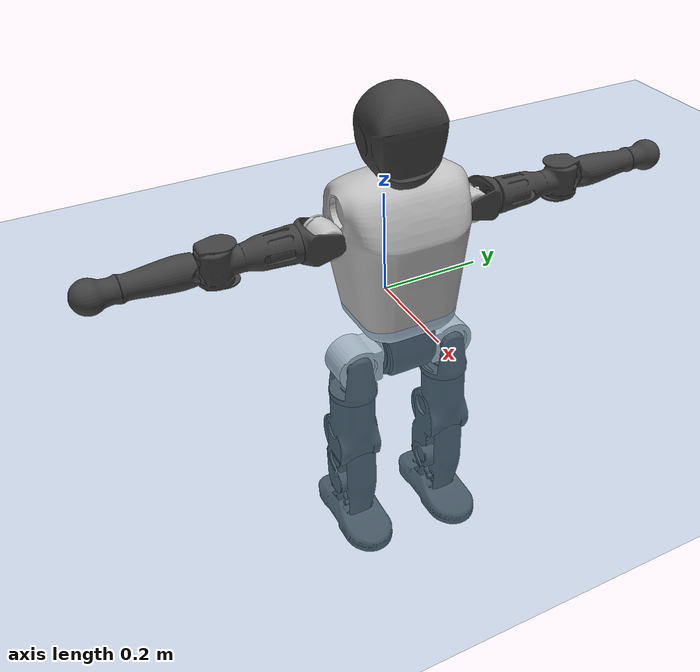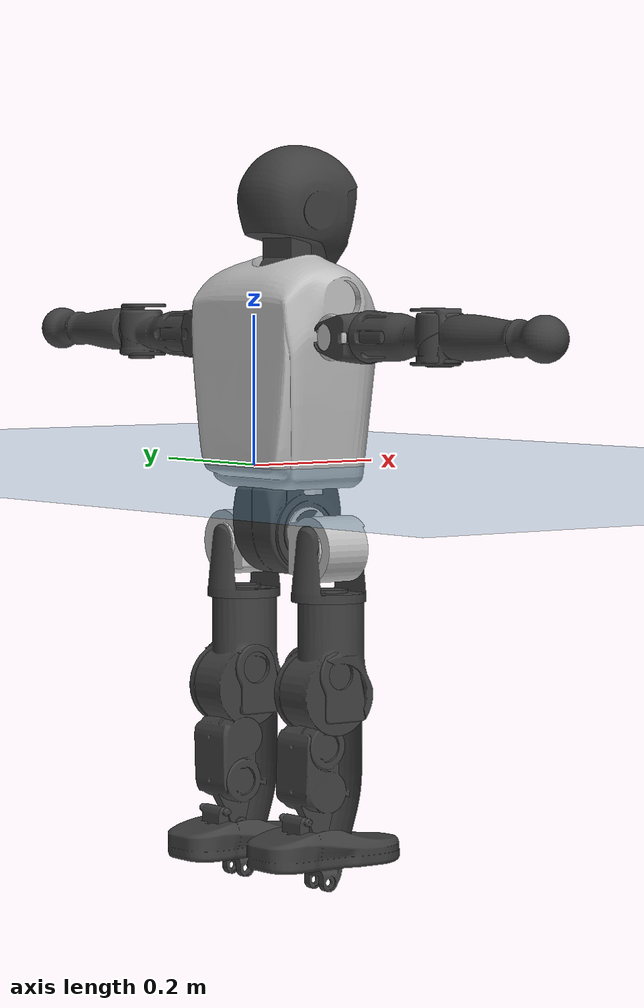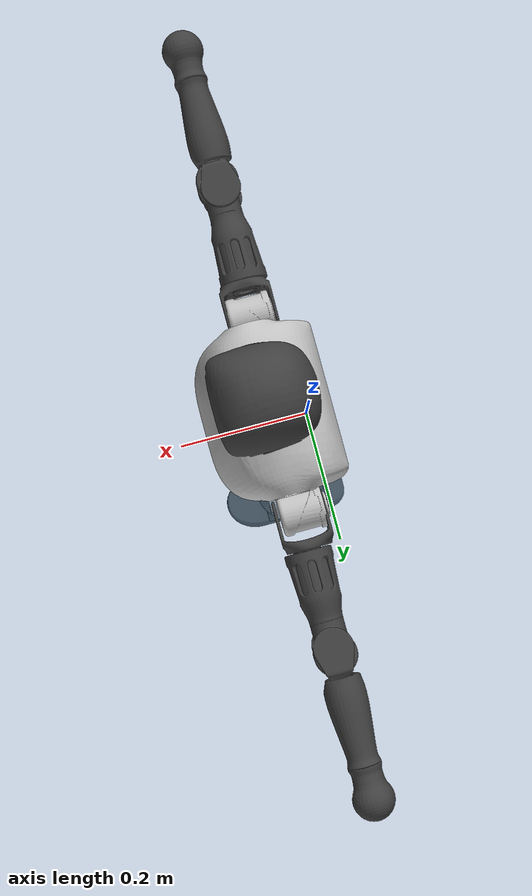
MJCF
<mujoco model="T1">
  <compiler angle="radian" assetdir="assets" balanceinertia="true" inertiafromgeom="false"/>

  <option timestep="0.005" density="1.2" viscosity="2e-05"/>

  <size nkey="1"/>

  <visual>
    <quality shadowsize="8192"/>
    <map shadowclip="0.5"/>
  </visual>

  <default>
    <default class="/">
      <joint armature="0.01" damping="0.01" frictionloss="0.1"/>
      <geom contype="0" conaffinity="0" group="1" solref="-1000 -80"/>
      <site size="0.01 0.005 0.005" group="5"/>
      <general forcelimited="true" biastype="affine" gainprm="25" biasprm="0 -25 -0.6"/>
      <default class="t1">
        <geom rgba="0.25 0.25 0.25 1"/>
        <default class="visual">
          <geom type="mesh" group="2"/>
        </default>
        <default class="collision">
          <geom group="3"/>
        </default>
        <default class="foot">
          <geom size="0.1115 0.05 0.015" type="box" condim="6" group="4" priority="1" solimp="0.015 1 0.015"/>
        </default>
        <default class="reward_collision_sphere">
          <geom group="5" rgba="1 0 0 1"/>
        </default>
      </default>
    </default>
  </default>

  <asset>
    <texture type="skybox" colorspace="auto" name="//unnamed_texture_0" builtin="gradient" rgb1="0.95 0.95 0.95" rgb2="0.95 0.95 0.95" width="100" height="600"/>
    <texture type="2d" colorspace="auto" name="texplane" builtin="checker" rgb1="0.345 0.575 0.748" rgb2="0.345 0.575 0.748" markrgb="1 1 1" width="512" height="512"/>
    <material name="MatPlane" class="/" texture="texplane" texuniform="true" texrepeat="2 2" specular="0.9"/>
    <mesh name="Trunk" class="/" file="Trunk.stl"/>
    <mesh name="H1" class="/" file="H1.stl"/>
    <mesh name="H2" class="/" file="H2.stl"/>
    <mesh name="AL1" class="/" file="AL1.stl"/>
    <mesh name="AL2" class="/" file="AL2.stl"/>
    <mesh name="AL3" class="/" file="AL3.stl"/>
    <mesh name="left_hand_link" class="/" file="left_hand_link.stl"/>
    <mesh name="AR1" class="/" file="AR1.stl"/>
    <mesh name="AR2" class="/" file="AR2.stl"/>
    <mesh name="AR3" class="/" file="AR3.stl"/>
    <mesh name="right_hand_link" class="/" file="right_hand_link.stl"/>
    <mesh name="Waist" class="/" file="Waist.stl"/>
    <mesh name="Hip_Pitch_Left" class="/" file="Hip_Pitch_Left.stl"/>
    <mesh name="Hip_Roll_Left" class="/" file="Hip_Roll_Left.stl"/>
    <mesh name="Hip_Yaw_Left" class="/" file="Hip_Yaw_Left.stl"/>
    <mesh name="Shank_Left" class="/" file="Shank_Left.stl"/>
    <mesh name="Ankle_Cross_Left" class="/" file="Ankle_Cross_Left.stl"/>
    <mesh name="left_foot_link" class="/" file="left_foot_link.stl"/>
    <mesh name="Hip_Pitch_Right" class="/" file="Hip_Pitch_Right.stl"/>
    <mesh name="Hip_Roll_Right" class="/" file="Hip_Roll_Right.stl"/>
    <mesh name="Hip_Yaw_Right" class="/" file="Hip_Yaw_Right.stl"/>
    <mesh name="Shank_Right" class="/" file="Shank_Right.stl"/>
    <mesh name="Ankle_Cross_Right" class="/" file="Ankle_Cross_Right.stl"/>
    <mesh name="right_foot_link" class="/" file="right_foot_link.stl"/>
  </asset>

  <worldbody>
    <geom name="floor" class="/" size="100 100 0.125" type="plane" group="0" material="MatPlane"/>
    <light name="toplight_shadow" class="/" pos="0 0 5" dir="0.0990148 0.0990148 -0.990148" type="directional" ambient="0.04 0.04 0.04" diffuse="0.55 0.55 0.55" specular="0.12 0.12 0.12"/>
    <light name="toplight_fill" class="/" pos="0 0 5" dir="0.0990148 0.0990148 -0.990148" type="directional" castshadow="false" ambient="0.04 0.04 0.04" diffuse="0.3 0.3 0.3" specular="0.08 0.08 0.08"/>
    <body name="trunk" childclass="t1" pos="0.00100623 6.55248e-05 0.00247892" quat="1 2.5523e-05 -0.000210337 0.000345538">
      <inertial pos="0.046353 0.000685614 0.0811141" quat="0.999897 0.00160311 -0.00619633 -0.0128155" mass="7.22316" diaginertia="0.0432367 0.0511578 0.0159721"/>
      <joint name="//unnamed_joint_0" type="free" armature="0" damping="0" frictionloss="0"/>
      <geom name="//unnamed_geom_1" class="visual" rgba="0.76 0.76 0.76 1" mesh="Trunk"/>
      <geom name="//unnamed_geom_2" class="collision" size="0.064137 0.0855159 0.128274" pos="0.0518471 0 0.0935792" type="box"/>
      <geom name="//unnamed_geom_3" class="reward_collision_sphere" size="0.0983433" pos="0.0518471 0 0.0779826"/>
      <geom name="//unnamed_geom_4" class="reward_collision_sphere" size="0.0128274" pos="0.0518471 0.0783304 0"/>
      <geom name="//unnamed_geom_5" class="reward_collision_sphere" size="0.0128274" pos="0.0518471 -0.0783304 0"/>
      <geom name="//unnamed_geom_6" class="reward_collision_sphere" size="0.0128274" pos="0.0518471 0.0986042 0.140369"/>
      <geom name="//unnamed_geom_7" class="reward_collision_sphere" size="0.0128274" pos="0.0518471 -0.0986042 0.140369"/>
      <site name="imu" pos="0.00422841 -0.00971936 0.0114498" size="0.00855159"/>
      <camera name="track" pos="0 -1.84307 0" quat="0.707107 0.707107 0 0" mode="trackcom"/>
      <camera name="ego_camera" pos="0.105422 0 0.327527" quat="-0.5 -0.5 0.5 0.5"/>
      <body name="H1" pos="0.050542 -0.00317798 0.189165" quat="0.999999 -0.000461425 0.00075781 -0.00101387">
        <inertial pos="-0.00267287 -0.00171706 0.0445322" quat="0.760742 -0.0178317 0.00327798 0.648801" mass="0.273825" diaginertia="0.000118218 0.000148134 4.40026e-05"/>
        <joint name="AAHead_yaw" pos="0 0 0" axis="-4.34692e-05 0.000224104 1" stiffness="0.00600454" range="-1.52845 1.62338" armature="0.00892323" damping="0.0135522" frictionloss="0.0806658"/>
        <geom name="//unnamed_geom_8" class="visual" mesh="H1"/>
        <body name="H2" pos="-0.00104126 -0.00168571 0.048367" quat="1 0.000125493 -0.000211545 -9.52676e-05">
          <inertial pos="0.0071123 0.00244239 0.0795888" quat="0.987707 0.107415 -0.0730755 -0.0869309" mass="0.39473" diaginertia="0.00099449 0.00123986 0.000494103"/>
          <joint name="Head_pitch" pos="0 0 0" axis="0.000845406 -0.999988 0.00489374" stiffness="0.0068529" range="-1.22181 0.403564" armature="0.00763242" damping="0" frictionloss="0.084233"/>
          <geom name="//unnamed_geom_9" class="visual" mesh="H2"/>
          <geom name="//unnamed_geom_10" class="collision" size="0.0684128" pos="0.00864118 0 0.0857809"/>
          <geom name="//unnamed_geom_11" class="reward_collision_sphere" size="0.0769644" pos="0.0172824 0 0.0779826"/>
        </body>
      </body>
      <body name="AL1" pos="0.0489947 0.0980652 0.169168" quat="0.999999 -0.00094605 0.000359156 0.000165179">
        <inertial pos="0.00182724 0.0439192 0.00150582" quat="0.496644 0.495284 -0.515048 0.492711" mass="0.328604" diaginertia="0.000658852 0.00085582 8.68223e-05"/>
        <joint name="Left_Shoulder_Pitch" pos="0 0 0" axis="0.00543386 0.999985 -0.000338576" range="-3.3453 1.16181" armature="0.00866898" damping="0.00282596" frictionloss="0.0839267"/>
        <geom name="//unnamed_geom_12" class="visual" rgba="0.76 0.76 0.76 1" mesh="AL1"/>
        <body name="AL2" pos="0.00274481 0.0456629 0.000907261" quat="1 0.000389349 0.000230031 -0.000163442">
          <inertial pos="0.00620692 0.0354968 -0.00267503" quat="0.488071 0.513014 -0.486868 0.511432" mass="0.102572" diaginertia="0.000199359 0.000241185 5.18056e-05"/>
          <joint name="Left_Shoulder_Roll" pos="0 0 0" axis="-0.999966 0.0063524 -0.0052428" range="-1.63085 1.73229" armature="0.00968424" damping="0.0027365" frictionloss="0.0771821"/>
          <geom name="//unnamed_geom_13" class="visual" mesh="AL2"/>
          <body name="AL3" pos="0.00458145 0.0579893 -0.000193568" quat="1 -2.98112e-05 0.000157329 -5.18143e-05">
            <inertial pos="-0.00127069 0.0775082 -0.000304631" quat="0.704822 0.709292 0.00873902 0.00737293" mass="0.651787" diaginertia="0.00640448 0.00856592 0.000176567"/>
            <joint name="Left_Elbow_Pitch" pos="0 0 0" axis="-0.00292565 -0.999995 0.00150784" stiffness="0.0115269" range="-2.32371 2.26192" armature="0.00820334" damping="0.00871308" frictionloss="0.0842945"/>
            <geom name="//unnamed_geom_14" class="visual" mesh="AL3"/>
            <geom name="//unnamed_geom_15" class="collision" size="0.0256548 0.064137" pos="0 0.0460767 0" quat="0.707105 0.707108 0 0" type="cylinder"/>
            <geom name="//unnamed_geom_16" class="reward_collision_sphere" size="0.0307857"/>
            <body name="left_hand_link" pos="0.00108347 0.136755 0.00381178" quat="1 -0.000441748 -0.000589674 0.000231773">
              <inertial pos="0.000495701 0.0987813 -0.00123572" quat="0.705646 0.708512 0.00293674 0.00811481" mass="0.204643" diaginertia="0.00403901 0.00532393 5.95872e-05"/>
              <joint name="Left_Elbow_Yaw" pos="0 0 0" axis="0.00633586 -0.0107371 0.999922" range="-2.44824 0.04478" armature="0.00864192" damping="0" frictionloss="0.0891454"/>
              <geom name="//unnamed_geom_17" class="visual" mesh="left_hand_link"/>
              <geom name="//unnamed_geom_18" class="collision" size="0.0256548 0.0748265" pos="0 0.119799 0" quat="0.707105 0.707108 0 0" type="cylinder"/>
              <geom name="//unnamed_geom_19" class="reward_collision_sphere" size="0.042758"/>
              <geom name="//unnamed_geom_20" class="reward_collision_sphere" size="0.0299306" pos="0 0.101369 0"/>
              <geom name="//unnamed_geom_21" class="reward_collision_sphere" size="0.0299306" pos="0 0.19813 0"/>
            </body>
          </body>
        </body>
      </body>
      <body name="AR1" pos="0.0475446 -0.0945543 0.17039" quat="1 2.01749e-05 0.000418923 -7.66516e-05">
        <inertial pos="-0.00208649 -0.0422072 -0.000617191" quat="0.500217 0.498409 -0.506201 0.495109" mass="0.346127" diaginertia="0.000658325 0.000860562 8.61875e-05"/>
        <joint name="Right_Shoulder_Pitch" pos="0 0 0" axis="-0.0092211 -0.999897 0.010998" stiffness="0.00698368" range="-1.19952 3.31535" armature="0.00889938" damping="0.0180823" frictionloss="0.0834224"/>
        <geom name="//unnamed_geom_22" class="visual" rgba="0.76 0.76 0.76 1" mesh="AR1"/>
        <body name="AR2" pos="-0.00156833 -0.0403239 -0.000452458" quat="0.999999 -0.000446774 0.000935271 0.000989171">
          <inertial pos="0.000274652 -0.0326651 -0.00259472" quat="0.509109 0.486655 -0.522982 0.480067" mass="0.102256" diaginertia="0.00019398 0.000233704 5.15787e-05"/>
          <joint name="Right_Shoulder_Roll" pos="0 0 0" axis="-0.999966 0.00374272 0.00731986" stiffness="0.0105318" range="-1.6863 1.54116" armature="0.00833383" damping="0.0132863" frictionloss="0.0781795"/>
          <geom name="//unnamed_geom_23" class="visual" mesh="AR2"/>
          <body name="AR3" pos="-0.00277175 -0.0549341 0.00185797" quat="1 -0.000374224 0.000193293 -8.31998e-05">
            <inertial pos="-0.000427366 -0.0797215 0.00121612" quat="0.7069 0.707311 -0.000564323 -0.00186729" mass="0.620374" diaginertia="0.00602863 0.00886523 0.000178517"/>
            <joint name="Right_Elbow_Pitch" pos="0 0 0" axis="-0.00225287 0.999996 0.00165477" stiffness="0.00369583" range="-2.27422 2.2663" armature="0.00860724" damping="0.0194205" frictionloss="0.0912617"/>
            <geom name="//unnamed_geom_24" class="visual" mesh="AR3"/>
            <geom name="//unnamed_geom_25" class="collision" size="0.0256548 0.064137" pos="0 -0.0460767 0" quat="0.707105 0.707108 0 0" type="cylinder"/>
            <geom name="//unnamed_geom_26" class="reward_collision_sphere" size="0.0307857"/>
            <body name="right_hand_link" pos="-0.0019852 -0.134488 0.00108728" quat="0.999999 -0.000237031 -0.000992821 0.00109091">
              <inertial pos="0.000252231 -0.100904 0.00216232" quat="0.702877 0.711272 -0.0028132 0.00699635" mass="0.201545" diaginertia="0.00374052 0.00530842 6.1049e-05"/>
              <joint name="Right_Elbow_Yaw" pos="0 0 0" axis="-0.000493091 0.000664476 1" range="-0.0490173 2.44636" armature="0.00900708" damping="0.00732819" frictionloss="0.0842786"/>
              <geom name="//unnamed_geom_27" class="visual" mesh="right_hand_link"/>
              <geom name="//unnamed_geom_28" class="collision" size="0.0256548 0.0748265" pos="0 -0.119799 0" quat="0.707105 0.707108 0 0" type="cylinder"/>
              <geom name="//unnamed_geom_29" class="reward_collision_sphere" size="0.042758"/>
              <geom name="//unnamed_geom_30" class="reward_collision_sphere" size="0.0299306" pos="0 -0.101369 0"/>
              <geom name="//unnamed_geom_31" class="reward_collision_sphere" size="0.0299306" pos="0 -0.19813 0"/>
            </body>
          </body>
        </body>
      </body>
      <body name="Waist" pos="0.0550451 0.00173749 -0.0923861" quat="1 -0.000316377 0.000107074 -0.000162898">
        <inertial pos="0.00295118 0.000208333 0.00694572" quat="0.985402 -0.0016109 -0.170184 -0.00426854" mass="1.61958" diaginertia="0.0025082 0.00335272 0.00132313"/>
        <joint name="Waist" pos="0 0 0" axis="0.00283876 -0.00437352 0.999986" stiffness="0.00300511" range="-1.55459 1.61527" armature="0.00772377" damping="0.0184019" frictionloss="0.0892064"/>
        <geom name="//unnamed_geom_32" class="visual" mesh="Waist"/>
        <body name="Hip_Pitch_Left" pos="-0.000613889 0.0992733 -0.000456472" quat="1 0.000472839 0.000273264 0.000108582">
          <inertial pos="-0.00137857 -0.00584619 -0.0147718" quat="0.975223 0.220723 0.0145475 0.00306986" mass="0.613373" diaginertia="0.000835799 0.000941144 0.000350165"/>
          <joint name="Left_Hip_Pitch" pos="0 0 0" axis="-0.00700302 0.999955 -0.00636753" stiffness="0.0108904" range="-1.81018 1.62942" armature="0.0084327" damping="0.0250772" frictionloss="0.0857433"/>
          <geom name="//unnamed_geom_33" class="visual" rgba="0.76 0.76 0.76 1" mesh="Hip_Pitch_Left"/>
          <body name="Hip_Roll_Left" pos="0.00282847 -0.00155772 -0.0187684" quat="1 -0.000303211 0.00045677 0.000581172">
            <inertial pos="-0.000124504 8.53485e-07 -0.0435564" quat="0.708444 -0.00499026 -0.00619975 0.705722" mass="0.239012" diaginertia="0.000844024 0.000976875 0.000143444"/>
            <joint name="Left_Hip_Roll" pos="0 0 0" axis="-0.999979 0.00545823 -0.00346801" range="-1.54378 0.175656" armature="0.00864414" damping="0.0141958" frictionloss="0.0960839"/>
            <geom name="//unnamed_geom_34" class="visual" mesh="Hip_Roll_Left"/>
            <geom name="//unnamed_geom_35" class="reward_collision_sphere" size="0.0470338"/>
            <body name="Hip_Yaw_Left" pos="-0.000834914 0.00122422 -0.0649101" quat="0.999999 -0.000782644 4.42625e-06 -0.00108727">
              <inertial pos="-0.0073458 0.000140369 -0.0683815" quat="0.69918 -0.0312149 -0.0296293 0.713649" mass="1.30862" diaginertia="0.0123149 0.0166422 0.000772414"/>
              <joint name="Left_Hip_Yaw" pos="0 0 0" axis="-0.00853753 -0.000628755 -0.999963" stiffness="0.00171061" range="-1.01317 0.998416" armature="0.00859704" damping="0" frictionloss="0.0859763"/>
              <geom name="//unnamed_geom_36" class="visual" mesh="Hip_Yaw_Left"/>
              <geom name="//unnamed_geom_37" class="collision" size="0.042758 0.0684128" type="cylinder"/>
              <body name="Shank_Left" pos="-0.012126 -0.00176822 -0.107134" quat="0.999999 0.00061988 -0.000353034 0.00105421">
                <inertial pos="-0.00441363 0.0021413 -0.0979279" quat="0.998024 -0.00136091 -0.0305104 0.0549038" mass="1.1154" diaginertia="0.016197 0.0238689 0.000536978"/>
                <joint name="Left_Knee_Pitch" pos="0 0 0" axis="-0.0023351 0.999987 -0.00463862" stiffness="0.00266039" range="0.0386414 2.33839" armature="0.00917857" damping="0.0148605" frictionloss="0.0947133"/>
                <geom name="//unnamed_geom_38" class="visual" mesh="Shank_Left"/>
                <geom name="//unnamed_geom_39" class="collision" size="0.042758 0.064137" pos="0 0 -0.0935792" type="cylinder"/>
                <geom name="//unnamed_geom_40" class="reward_collision_sphere" size="0.0555854"/>
                <body name="Ankle_Cross_Left" pos="-0.00208067 -0.00175011 -0.218638" quat="0.999999 0.000406996 0.00124288 -0.000423002">
                  <inertial pos="-0.00258056 0.00259905 -0.00699956" quat="0.447157 0.543835 0.556258 0.441442" mass="0.0465487" diaginertia="1.46501e-05 1.68286e-05 3.22629e-06"/>
                  <joint name="Left_Ankle_Pitch" pos="0 0 0" axis="-0.0145876 0.999891 -0.00236286" range="-0.879397 0.406075" armature="0.00731391" damping="0.0228244" frictionloss="0.0940038"/>
                  <geom name="//unnamed_geom_41" class="visual" mesh="Ankle_Cross_Left"/>
                  <body name="left_foot_link" pos="0.00189327 -0.00126128 -0.0112576" quat="1 0.000655013 -0.000669849 0.000188208">
                    <inertial pos="-0.00182636 -0.00153751 -0.00652277" quat="-0.00355002 0.621504 -0.000632818 0.783403" mass="0.413018" diaginertia="0.00134122 0.00157721 0.000641584"/>
                    <joint name="Left_Ankle_Roll" pos="0 0 0" axis="-0.99993 0.0116974 0.00152214" range="-0.495613 0.396186" armature="0.00857361" damping="0" frictionloss="0.0824065"/>
                    <geom name="//unnamed_geom_42" class="visual" mesh="left_foot_link"/>
                    <geom name="left_foot" class="foot" size="0.0989756 0.0378719 0.0143953" pos="0.00864118 0 -0.0116974"/>
                    <geom name="//unnamed_geom_44" class="reward_collision_sphere" size="0.0444683" pos="0.00864118 0 -0.0116974"/>
                    <geom name="//unnamed_geom_45" class="reward_collision_sphere" size="0.0256548" pos="0.0820912 -0.0211953 -0.0116974"/>
                    <geom name="//unnamed_geom_46" class="reward_collision_sphere" size="0.0256548" pos="-0.0604882 -0.0211953 -0.0116974"/>
                    <site name="left_foot" class="foot" pos="0.00864118 0 -0.0116974" size="0.00855159"/>
                  </body>
                </body>
              </body>
            </body>
          </body>
        </body>
        <body name="Hip_Pitch_Right" pos="-0.00374993 -0.0990128 0.00030536" quat="0.999999 -0.00057662 0.00129233 -0.000613729">
          <inertial pos="3.48576e-05 0.00869713 -0.0125136" quat="0.972657 -0.231835 0.0126654 0.00555351" mass="0.64897" diaginertia="0.000883274 0.00098585 0.000377318"/>
          <joint name="Right_Hip_Pitch" pos="0 0 0" axis="-0.00670528 -0.999923 -0.0103986" range="-1.57077 1.78534" armature="0.00942494" damping="0.00420717" frictionloss="0.097519"/>
          <geom name="//unnamed_geom_47" class="visual" rgba="0.76 0.76 0.76 1" mesh="Hip_Pitch_Right"/>
          <body name="Hip_Roll_Right" pos="-0.000338947 -0.00237564 -0.0127378" quat="1 -6.04287e-05 0.000244307 -0.000169595">
            <inertial pos="0.00214324 0.00117529 -0.0445228" quat="0.70401 -0.00777174 -0.0173401 0.709936" mass="0.233115" diaginertia="0.000783967 0.000987622 0.000143743"/>
            <joint name="Right_Hip_Roll" pos="0 0 0" axis="-0.999999 -0.00139949 0.000319231" stiffness="0.00339581" range="-0.202925 1.6227" armature="0.0080402" damping="0.0113501" frictionloss="0.0862514"/>
            <geom name="//unnamed_geom_48" class="visual" mesh="Hip_Roll_Right"/>
            <geom name="//unnamed_geom_49" class="reward_collision_sphere" size="0.0470338"/>
            <body name="Hip_Yaw_Right" pos="-0.000300198 -0.00235517 -0.0644296" quat="1 -0.000256568 0.000847656 0.00034109">
              <inertial pos="-0.00275726 -0.000597339 -0.068219" quat="0.713364 -0.0176468 -0.0339543 0.699748" mass="1.42567" diaginertia="0.0129789 0.0173445 0.0007914"/>
              <joint name="Right_Hip_Yaw" pos="0 0 0" axis="0.00636596 0.0145693 -0.999874" stiffness="0.00478225" range="-0.994911 0.992474" armature="0.00847745" damping="0.00345894" frictionloss="0.078242"/>
              <geom name="//unnamed_geom_50" class="visual" mesh="Hip_Yaw_Right"/>
              <geom name="//unnamed_geom_51" class="collision" size="0.042758 0.0684128" type="cylinder"/>
              <body name="Shank_Right" pos="-0.0138031 0.00257691 -0.106579" quat="1 -0.000124445 0.000604214 -0.000558851">
                <inertial pos="-0.00307277 0.00239817 -0.0957992" quat="0.999184 -0.00256234 -0.0247614 -0.0318174" mass="1.13463" diaginertia="0.016834 0.0227228 0.000550666"/>
                <joint name="Right_Knee_Pitch" pos="0 0 0" axis="-0.000193107 -0.999963 -0.00856386" stiffness="0.00993622" range="-2.36675 -0.0179684" armature="0.00808277" damping="0.022583" frictionloss="0.0961119"/>
                <geom name="//unnamed_geom_52" class="visual" mesh="Shank_Right"/>
                <geom name="//unnamed_geom_53" class="collision" size="0.042758 0.064137" pos="0 0 -0.0935792" type="cylinder"/>
                <geom name="//unnamed_geom_54" class="reward_collision_sphere" size="0.0555854"/>
                <body name="Ankle_Cross_Right" pos="-0.00262529 -0.000802932 -0.22066" quat="0.999999 0.000473587 0.000673409 -0.00060985">
                  <inertial pos="-0.00343791 0.000825088 -0.00711365" quat="0.448675 0.547955 0.556533 0.434404" mass="0.0430431" diaginertia="1.34963e-05 1.64275e-05 3.18273e-06"/>
                  <joint name="Right_Ankle_Pitch" pos="0 0 0" axis="0.00286907 -0.999995 0.00145568" stiffness="0.00708421" range="-0.358613 0.815765" armature="0.00959761" damping="0" frictionloss="0.0823525"/>
                  <geom name="//unnamed_geom_55" class="visual" mesh="Ankle_Cross_Right"/>
                  <body name="right_foot_link" pos="0.00198374 0.000606185 -0.00654772" quat="0.999999 0.000441388 -0.000810911 0.00105394">
                    <inertial pos="0.00102852 0.00125902 -0.00918372" quat="0.00153794 0.62066 -0.000221721 0.784078" mass="0.452841" diaginertia="0.00129018 0.00161604 0.000627771"/>
                    <joint name="Right_Ankle_Roll" pos="0 0 0" axis="-0.999922 -0.00666317 0.0106094" range="-0.425481 0.492773" armature="0.00731441" damping="0.00514552" frictionloss="0.0815399"/>
                    <geom name="//unnamed_geom_56" class="visual" mesh="right_foot_link"/>
                    <geom name="right_foot" class="foot" size="0.100858 0.0429342 0.0131019" pos="0.00864118 0 -0.0116974"/>
                    <geom name="//unnamed_geom_58" class="reward_collision_sphere" size="0.0342064"/>
                    <geom name="//unnamed_geom_59" class="reward_collision_sphere" size="0.0256548" pos="0.00864118 0 -0.0116974"/>
                    <geom name="//unnamed_geom_60" class="reward_collision_sphere" size="0.0256548" pos="0.0820912 0.0211953 -0.0116974"/>
                    <geom name="//unnamed_geom_61" class="reward_collision_sphere" size="0.0256548" pos="-0.0604882 0.0211953 -0.0116974"/>
                    <site name="right_foot" class="foot" pos="0.00864118 0 -0.0116974" size="0.00855159"/>
                  </body>
                </body>
              </body>
            </body>
          </body>
        </body>
      </body>
    </body>
  </worldbody>

  <contact>
    <pair class="/" geom1="floor" geom2="left_foot" name="//unnamed_contact_0"/>
    <pair class="/" geom1="floor" geom2="right_foot" name="//unnamed_contact_1"/>
  </contact>

  <actuator>
    <general name="AAHead_yaw" class="/" joint="AAHead_yaw" forcerange="-5.3973 5.3973" gainprm="23.1344" biasprm="0 -23.1344 -0.542731"/>
    <general name="Head_pitch" class="/" joint="Head_pitch" forcerange="-5.85138 5.85138" gainprm="23.1344" biasprm="0 -23.1344 -0.542731"/>
    <general name="Left_Shoulder_Pitch" class="/" joint="Left_Shoulder_Pitch" forcerange="-15.5443 15.5443" gainprm="23.1344" biasprm="0 -23.1344 -0.542731"/>
    <general name="Left_Shoulder_Roll" class="/" joint="Left_Shoulder_Roll" forcerange="-15.2424 15.2424" gainprm="23.1344" biasprm="0 -23.1344 -0.542731"/>
    <general name="Left_Elbow_Pitch" class="/" joint="Left_Elbow_Pitch" forcerange="-16.7501 16.7501" gainprm="23.1344" biasprm="0 -23.1344 -0.542731"/>
    <general name="Left_Elbow_Yaw" class="/" joint="Left_Elbow_Yaw" forcerange="-15.4987 15.4987" gainprm="23.1344" biasprm="0 -23.1344 -0.542731"/>
    <general name="Right_Shoulder_Pitch" class="/" joint="Right_Shoulder_Pitch" forcerange="-15.6136 15.6136" gainprm="23.1344" biasprm="0 -23.1344 -0.542731"/>
    <general name="Right_Shoulder_Roll" class="/" joint="Right_Shoulder_Roll" forcerange="-15.3633 15.3633" gainprm="23.1344" biasprm="0 -23.1344 -0.542731"/>
    <general name="Right_Elbow_Pitch" class="/" joint="Right_Elbow_Pitch" forcerange="-14.6654 14.6654" gainprm="23.1344" biasprm="0 -23.1344 -0.542731"/>
    <general name="Right_Elbow_Yaw" class="/" joint="Right_Elbow_Yaw" forcerange="-16.5647 16.5647" gainprm="23.1344" biasprm="0 -23.1344 -0.542731"/>
    <general name="Waist" class="/" joint="Waist" forcerange="-28.267 28.267" gainprm="23.1344" biasprm="0 -23.1344 -0.542731"/>
    <general name="Left_Hip_Pitch" class="/" joint="Left_Hip_Pitch" forcerange="-37.385 37.385" gainprm="23.1344" biasprm="0 -23.1344 -0.542731"/>
    <general name="Left_Hip_Roll" class="/" joint="Left_Hip_Roll" forcerange="-26.0946 26.0946" gainprm="23.1344" biasprm="0 -23.1344 -0.542731"/>
    <general name="Left_Hip_Yaw" class="/" joint="Left_Hip_Yaw" forcerange="-27.4117 27.4117" gainprm="23.1344" biasprm="0 -23.1344 -0.542731"/>
    <general name="Left_Knee_Pitch" class="/" joint="Left_Knee_Pitch" forcerange="-54.893 54.893" gainprm="23.1344" biasprm="0 -23.1344 -0.542731"/>
    <general name="Left_Ankle_Pitch" class="/" joint="Left_Ankle_Pitch" forcerange="-17.0796 17.0796" gainprm="23.1344" biasprm="0 -23.1344 -0.542731"/>
    <general name="Left_Ankle_Roll" class="/" joint="Left_Ankle_Roll" forcerange="-12.5366 12.5366" gainprm="23.1344" biasprm="0 -23.1344 -0.542731"/>
    <general name="Right_Hip_Pitch" class="/" joint="Right_Hip_Pitch" forcerange="-40.5012 40.5012" gainprm="23.1344" biasprm="0 -23.1344 -0.542731"/>
    <general name="Right_Hip_Roll" class="/" joint="Right_Hip_Roll" forcerange="-26.2773 26.2773" gainprm="23.1344" biasprm="0 -23.1344 -0.542731"/>
    <general name="Right_Hip_Yaw" class="/" joint="Right_Hip_Yaw" forcerange="-27.3398 27.3398" gainprm="23.1344" biasprm="0 -23.1344 -0.542731"/>
    <general name="Right_Knee_Pitch" class="/" joint="Right_Knee_Pitch" forcerange="-56.9991 56.9991" gainprm="23.1344" biasprm="0 -23.1344 -0.542731"/>
    <general name="Right_Ankle_Pitch" class="/" joint="Right_Ankle_Pitch" forcerange="-15.536 15.536" gainprm="23.1344" biasprm="0 -23.1344 -0.542731"/>
    <general name="Right_Ankle_Roll" class="/" joint="Right_Ankle_Roll" forcerange="-12.1946 12.1946" gainprm="23.1344" biasprm="0 -23.1344 -0.542731"/>
  </actuator>

  <sensor>
    <gyro site="imu" name="imu_angular_velocity"/>
    <velocimeter site="imu" name="imu_linear_velocity"/>
    <framelinvel objtype="site" objname="left_foot" name="left_foot_global_linear_velocity"/>
    <framelinvel objtype="site" objname="right_foot" name="right_foot_global_linear_velocity"/>
  </sensor>

  <keyframe>
    <key name="home" qpos="0 0 0.6385 1 0 0 0 0 0 0 1.4 0 -0.4 0 -1.4 0 0.4 0 -0.4 0 0 0.8 -0.4 0 0.4 0 0 -0.8 0.4 0"/>
  </keyframe>
</mujoco>
